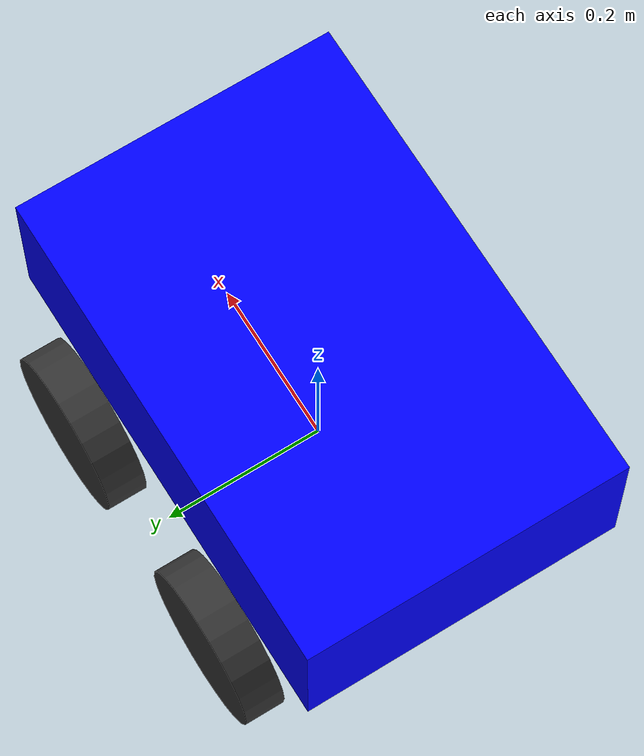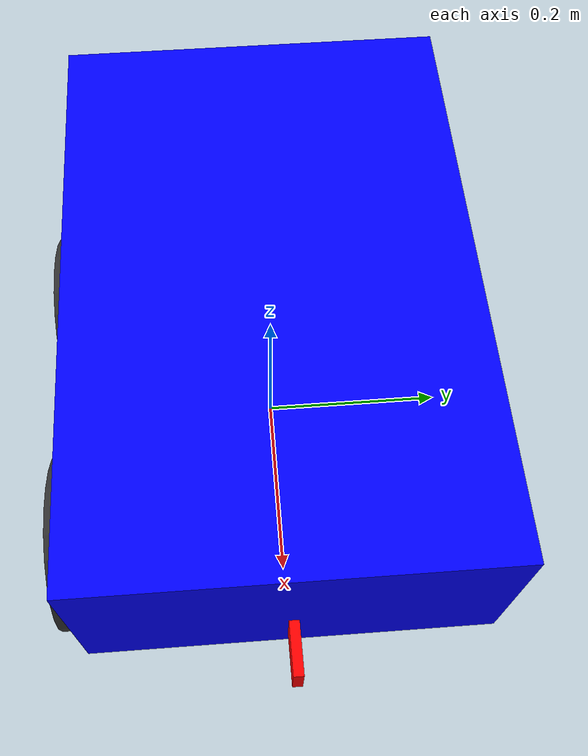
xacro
<?xml version="1.0"?>
<robot xmlns:xacro="http://www.ros.org/wiki/xacro" name="my_robot">

<!-- Include common properties -->
<xacro:include filename="$(find mon_urdf)/urdf/common_properties.xacro"/>

<!-- Defined properties -->
<xacro:property name="base_length" value="0.6"/>
<xacro:property name="base_width" value="0.4"/>
<xacro:property name="base_height" value="0.2"/>
<xacro:property name="wheel_radius" value="0.1"/>
<xacro:property name="wheel_length" value="0.05"/>
<xacro:property name="wheel_separation" value="0.45"/>
<xacro:property name="camera_length" value="0.01"/>
<xacro:property name="camera_width" value="0.05"/>
<xacro:property name="camera_height" value="0.1"/>

<!-- Links -->
<link name="base_footprint"/>

<link name="base_link">
  <visual>
    <geometry>
      <box size="${base_length} ${base_width} ${base_height}"/>
    </geometry>
    <origin xyz="0 0 ${base_height / 2.0}" rpy="0 0 0"/>
    <material name="blue"/>
  </visual>
  <collision>
    <geometry>
      <box size="${base_length} ${base_width} ${base_height}"/>
    </geometry>
    <origin xyz="0 0 ${base_height / 2.0}" rpy="0 0 0"/>
  </collision>
  <xacro:box_inertia m="15.0" l="${base_length}" w="${base_width}" h="${base_height}" xyz="0 0 ${base_height / 2.0}" rpy="0 0 0"/>
</link>

<!-- Wheels -->
<link name="front_right_wheel">
  <visual>
    <geometry>
      <cylinder radius="${wheel_radius}" length="${wheel_length}"/>
    </geometry>
    <origin xyz="0 0 0" rpy="${pi / 2.0} 0 0"/>
    <material name="black"/>
  </visual>
  <collision>
    <geometry>
      <cylinder radius="${wheel_radius}" length="${wheel_length}"/>
    </geometry>
    <origin xyz="0 0 0" rpy="${pi / 2.0} 0 0"/>
  </collision>
  <xacro:cylinder_inertia m="1.0" r="${wheel_radius}" h="${wheel_length}" xyz="0 0 0" rpy="${pi / 2.0} 0 0"/>
</link>

<link name="front_left_wheel">
  <visual>
    <geometry>
      <cylinder radius="${wheel_radius}" length="${wheel_length}"/>
    </geometry>
    <origin xyz="0 0 0" rpy="${pi / 2.0} 0 0"/>
    <material name="black"/>
  </visual>
  <collision>
    <geometry>
      <cylinder radius="${wheel_radius}" length="${wheel_length}"/>
    </geometry>
    <origin xyz="0 0 0" rpy="${pi / 2.0} 0 0"/>
  </collision>
  <xacro:cylinder_inertia m="1.0" r="${wheel_radius}" h="${wheel_length}" xyz="0 0 0" rpy="${pi / 2.0} 0 0"/>
</link>

<link name="back_right_wheel">
  <visual>
    <geometry>
      <cylinder radius="${wheel_radius}" length="${wheel_length}"/>
    </geometry>
    <origin xyz="0 0 0" rpy="${pi / 2.0} 0 0"/>
    <material name="black"/>
  </visual>
  <collision>
    <geometry>
      <cylinder radius="${wheel_radius}" length="${wheel_length}"/>
    </geometry>
    <origin xyz="0 0 0" rpy="${pi / 2.0} 0 0"/>
  </collision>
  <xacro:cylinder_inertia m="2.0" r="${wheel_radius}" h="${wheel_length}" xyz="0 0 0" rpy="${pi / 2.0} 0 0"/>
</link>

<link name="back_left_wheel">
  <visual>
    <geometry>
      <cylinder radius="${wheel_radius}" length="${wheel_length}"/>
    </geometry>
    <origin xyz="0 0 0" rpy="${pi / 2.0} 0 0"/>
    <material name="black"/>
  </visual>
  <collision>
    <geometry>
      <cylinder radius="${wheel_radius}" length="${wheel_length}"/>
    </geometry>
    <origin xyz="0 0 0" rpy="${pi / 2.0} 0 0"/>
  </collision>
  <xacro:cylinder_inertia m="2.0" r="${wheel_radius}" h="${wheel_length}" xyz="0 0 0" rpy="${pi / 2.0} 0 0"/>
</link>

<!-- Camera -->
<link name="camera_link">
  <visual>
    <geometry>
      <box size="${camera_length} ${camera_height} ${camera_width}"/>
    </geometry>
    <origin xyz="0 0 0" rpy="0 0 1.57"/>
    <material name="red"/>
  </visual>
  <collision>
    <geometry>
      <box size="${camera_length} ${camera_height} ${camera_width}"/>
    </geometry>
    <origin xyz="0 0 0" rpy="0 0 1.57"/>
  </collision>
  <xacro:box_inertia m="0.2" l="${camera_length}" w="${camera_height}" h="${camera_width}" xyz="0 0 0" rpy="0 0 0"/>
</link>

<!-- LiDAR -->
<link name="lidar_link">
  <visual>
    <geometry>
      <cylinder radius="0.05" length="0.07"/>
    </geometry>
    <origin xyz="0 0 0" rpy="0 0 0"/>
    <material name="green"/>
  </visual>
  <collision>
    <geometry>
      <cylinder radius="0.05" length="0.07"/>
    </geometry>
    <origin xyz="0 0 0" rpy="0 0 0"/>
  </collision>
  <xacro:cylinder_inertia m="0.83" r="0.05" h="0.07" xyz="0 0 0" rpy="0 0 0"/>
</link>

<!-- IMU -->
<link name="imu_link">
  <visual>
    <geometry>
      <box size="0.02 0.02 0.01"/>
    </geometry>
    <origin xyz="0 0 0" rpy="0 0 0"/>
    <material name="yellow"/>
  </visual>
  <collision>
    <geometry>
      <box size="0.02 0.02 0.01"/>
    </geometry>
    <origin xyz="0 0 0" rpy="0 0 0"/>
  </collision>
  <xacro:box_inertia m="0.1" l="0.02" w="0.02" h="0.01" xyz="0 0 0" rpy="0 0 0"/>
</link>

<!-- Joints -->
<joint name="base_joint" type="fixed">
  <parent link="base_footprint"/>
  <child link="base_link"/>
  <origin xyz="0 0 ${wheel_radius}" rpy="0 0 0"/>
</joint>

<!-- Front wheels as passive caster wheels -->
<joint name="front_right_wheel_joint" type="continuous">
  <parent link="base_link"/>
  <child link="front_right_wheel"/>
  <origin xyz="0.15 -${wheel_separation/2.0} -${base_height / 2.0}" rpy="0 0 0"/>
  <axis xyz="0 1 0"/>
  <dynamics damping="0.01" friction="0.0"/>
</joint>

<joint name="front_left_wheel_joint" type="continuous">
  <parent link="base_link"/>
  <child link="front_left_wheel"/>
  <origin xyz="0.15 ${wheel_separation/2.0} -${base_height / 2.0}" rpy="0 0 0"/>
  <axis xyz="0 1 0"/>
  <dynamics damping="0.01" friction="0.0"/>
</joint>

<!-- Back wheels as driven wheels -->
<joint name="back_left_wheel_joint" type="continuous">
  <parent link="base_link"/>
  <child link="back_left_wheel"/>
  <origin xyz="-0.15 ${wheel_separation/2.0} -${base_height / 2.0}" rpy="0 0 0"/>
  <axis xyz="0 1 0"/>
  <dynamics damping="0.1" friction="1.0"/>
</joint>

<joint name="back_right_wheel_joint" type="continuous">
  <parent link="base_link"/>
  <child link="back_right_wheel"/>
  <origin xyz="-0.15 -${wheel_separation/2.0} -${base_height / 2.0}" rpy="0 0 0"/>
  <axis xyz="0 1 0"/>
  <dynamics damping="0.1" friction="1.0"/>
</joint>

<!-- Sensor mounts -->
<joint name="lidar_link_joint" type="fixed">
  <parent link="base_link"/>
  <child link="lidar_link"/>
  <origin xyz="0 0 ${base_height / 2.0 + 0.035}" rpy="0 0 0"/>
</joint>

<joint name="imu_link_joint" type="fixed">
  <parent link="base_link"/>
  <child link="imu_link"/>
  <origin xyz="0.1 0 ${base_height / 2.0 + 0.005}" rpy="0 0 0"/>
</joint>

<joint name="camera_link_joint" type="fixed">
  <parent link="base_link"/>
  <child link="camera_link"/>
  <origin xyz="${base_length / 2.0} 0 ${base_height / 4.0}" rpy="0 0 0"/>
</joint>

<!-- Gazebo Materials -->
<gazebo reference="base_link">
  <material>Gazebo/Blue</material>
  <mu1>0.3</mu1>
  <mu2>0.3</mu2>
  <kp>10000000.0</kp>
  <kd>1000.0</kd>
</gazebo>

<!-- Front wheels - Friction minimale pour comportement caster -->
<gazebo reference="front_left_wheel">
  <material>Gazebo/Black</material>
  <mu1>0.0</mu1>
  <mu2>0.0</mu2>
  <kp>10000000.0</kp>
  <kd>1.0</kd>
  <minDepth>0.001</minDepth>
  <maxVel>10.0</maxVel>
</gazebo>

<gazebo reference="front_right_wheel">
  <material>Gazebo/Black</material>
  <mu1>0.0</mu1>
  <mu2>0.0</mu2>
  <kp>10000000.0</kp>
  <kd>1.0</kd>
  <minDepth>0.001</minDepth>
  <maxVel>10.0</maxVel>
</gazebo>

<!-- Back wheels - Friction élevée pour traction -->
<gazebo reference="back_left_wheel">
  <material>Gazebo/Black</material>
  <mu1>2.0</mu1>
  <mu2>1.0</mu2>
  <kp>10000000.0</kp>
  <kd>100.0</kd>
  <minDepth>0.001</minDepth>
  <maxVel>10.0</maxVel>
  <fdir1>1 0 0</fdir1>
</gazebo>

<gazebo reference="back_right_wheel">
  <material>Gazebo/Black</material>
  <mu1>2.0</mu1>
  <mu2>1.0</mu2>
  <kp>10000000.0</kp>
  <kd>100.0</kd>
  <minDepth>0.001</minDepth>
  <maxVel>10.0</maxVel>
  <fdir1>1 0 0</fdir1>
</gazebo>

<gazebo reference="camera_link">
  <material>Gazebo/Red</material>
</gazebo>

<gazebo reference="lidar_link">
  <material>Gazebo/Green</material>
</gazebo>

<gazebo reference="imu_link">
  <material>Gazebo/Yellow</material>
</gazebo>

<!-- Differential Drive Plugin -->
<gazebo>
  <plugin name="differential_drive_controller" filename="libgazebo_ros_diff_drive.so">
    <ros>
      <namespace>/</namespace>
    </ros>

    <!-- Update rate in Hz -->
    <update_rate>50</update_rate>

    <!-- wheels -->
    <left_joint>back_left_wheel_joint</left_joint>
    <right_joint>back_right_wheel_joint</right_joint>

    <!-- kinematics -->
    <wheel_separation>${wheel_separation}</wheel_separation>
    <wheel_diameter>${2 * wheel_radius}</wheel_diameter>

    <!-- limits -->
    <max_wheel_torque>20</max_wheel_torque>
    <max_wheel_acceleration>5.0</max_wheel_acceleration>

    <!-- output -->
    <publish_odom>true</publish_odom>
    <publish_odom_tf>true</publish_odom_tf>
    <publish_wheel_tf>true</publish_wheel_tf>

    <odometry_frame>odom</odometry_frame>
    <robot_base_frame>base_footprint</robot_base_frame>

    <!-- topics -->
    <command_topic>cmd_vel</command_topic>
    <odometry_topic>odom</odometry_topic>
  </plugin>
</gazebo>

<!-- Camera Plugin -->
<gazebo reference="camera_link">
  <sensor type="camera" name="camera1">
    <update_rate>30.0</update_rate>
    <camera name="head">
      <horizontal_fov>1.3962634</horizontal_fov>
      <image>
        <width>800</width>
        <height>600</height>
        <format>R8G8B8</format>
      </image>
      <clip>
        <near>0.02</near>
        <far>300</far>
      </clip>
      <noise>
        <type>gaussian</type>
        <mean>0.0</mean>
        <stddev>0.007</stddev>
      </noise>
    </camera>
    <plugin name="camera_controller" filename="libgazebo_ros_camera.so">
      <ros>
        <namespace>/camera</namespace>
      </ros>
      <camera_name>camera1</camera_name>
      <frame_name>camera_link</frame_name>
      <hack_baseline>0.07</hack_baseline>
    </plugin>
  </sensor>
</gazebo>

<!-- 3D LiDAR Plugin -->
<gazebo reference="lidar_link">
  <sensor type="ray" name="velodyne-VLP16">
    <pose>0 0 0 0 0 0</pose>
    <visualize>true</visualize>
    <update_rate>20</update_rate>
    <ray>
      <scan>
        <horizontal>
          <samples>440</samples>
          <resolution>1</resolution>
          <min_angle>-3.141592653589793</min_angle>
          <max_angle>3.141592653589793</max_angle>
        </horizontal>
        <vertical>
          <samples>16</samples>
          <resolution>1</resolution>
          <min_angle>-0.261799387799</min_angle>
          <max_angle>0.261799387799</max_angle>
        </vertical>
      </scan>
      <range>
        <min>0.3</min>
        <max>100.0</max>
        <resolution>0.001</resolution>
      </range>
      <noise>
        <type>gaussian</type>
        <mean>0.0</mean>
        <stddev>0.008</stddev>
      </noise>
    </ray>
    <plugin name="gazebo_ros_laser_controller" filename="libgazebo_ros_velodyne_laser.so">
      <ros>
        <namespace>/velodyne</namespace>
      </ros>
      <topic_name>points</topic_name>
      <frame_name>lidar_link</frame_name>
      <min_range>0.9</min_range>
      <max_range>130.0</max_range>
      <gaussian_noise>0.008</gaussian_noise>
    </plugin>
  </sensor>
</gazebo>

<!-- IMU Plugin -->
<gazebo reference="imu_link">
  <gravity>true</gravity>
  <sensor name="imu_sensor" type="imu">
    <always_on>true</always_on>
    <update_rate>200</update_rate>
    <visualize>true</visualize>
    <imu>
      <angular_velocity>
        <x>
          <noise type="gaussian">
            <mean>0.0</mean>
            <stddev>2e-4</stddev>
          </noise>
        </x>
        <y>
          <noise type="gaussian">
            <mean>0.0</mean>
            <stddev>2e-4</stddev>
          </noise>
        </y>
        <z>
          <noise type="gaussian">
            <mean>0.0</mean>
            <stddev>2e-4</stddev>
          </noise>
        </z>
      </angular_velocity>
      <linear_acceleration>
        <x>
          <noise type="gaussian">
            <mean>0.0</mean>
            <stddev>1.7e-2</stddev>
          </noise>
        </x>
        <y>
          <noise type="gaussian">
            <mean>0.0</mean>
            <stddev>1.7e-2</stddev>
          </noise>
        </y>
        <z>
          <noise type="gaussian">
            <mean>0.0</mean>
            <stddev>1.7e-2</stddev>
          </noise>
        </z>
      </linear_acceleration>
    </imu>
    <plugin filename="libgazebo_ros_imu_sensor.so" name="imu_plugin">
      <ros>
        <namespace>/imu</namespace>
      </ros>
      <topic_name>data</topic_name>
      <body_name>imu_link</body_name>
      <update_rate_hz>100.0</update_rate_hz>
      <frame_name>imu_link</frame_name>
      <initial_orientation_as_reference>false</initial_orientation_as_reference>
    </plugin>
    <pose>0 0 0 0 0 0</pose>
  </sensor>
</gazebo>

</robot>

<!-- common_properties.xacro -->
<robot xmlns:xacro="http://www.ros.org/wiki/xacro">

  <!-- Materials -->
  <material name="blue">
    <color rgba="0.0 0.0 1.0 1.0"/>
  </material>

  <material name="red">
    <color rgba="1.0 0.0 0.0 1.0"/>
  </material>

  <material name="green">
    <color rgba="0.0 1.0 0.0 1.0"/>
  </material>

  <material name="black">
    <color rgba="0.2 0.2 0.2 1.0"/>
  </material>

  <material name="yellow">
    <color rgba="1.0 1.0 0.0 1.0"/>
  </material>

  <material name="white">
    <color rgba="1.0 1.0 1.0 1.0"/>
  </material>

  <!-- Inertia macros -->
  <xacro:macro name="box_inertia" params="m l w h xyz rpy">
    <inertial>
      <mass value="${m}"/>
      <origin xyz="${xyz}" rpy="${rpy}"/>
      <inertia ixx="${(1/12) * m * (h*h + l*l)}" ixy="0.0" ixz="0.0"
               iyy="${(1/12) * m * (w*w + l*l)}" iyz="0.0"
               izz="${(1/12) * m * (w*w + h*h)}"/>
    </inertial>
  </xacro:macro>

  <xacro:macro name="cylinder_inertia" params="m r h xyz rpy">
    <inertial>
      <mass value="${m}"/>
      <origin xyz="${xyz}" rpy="${rpy}"/>
      <inertia ixx="${(1/12) * m * (3*r*r + h*h)}" ixy="0.0" ixz="0.0"
               iyy="${(1/12) * m * (3*r*r + h*h)}" iyz="0.0"
               izz="${(1/2) * m * r*r}"/>
    </inertial>
  </xacro:macro>

  <xacro:macro name="sphere_inertia" params="m r xyz rpy">
    <inertial>
      <mass value="${m}"/>
      <origin xyz="${xyz}" rpy="${rpy}"/>
      <inertia ixx="${(2/5) * m * r*r}" ixy="0.0" ixz="0.0"
               iyy="${(2/5) * m * r*r}" iyz="0.0"
               izz="${(2/5) * m * r*r}"/>
    </inertial>
  </xacro:macro>

</robot>
